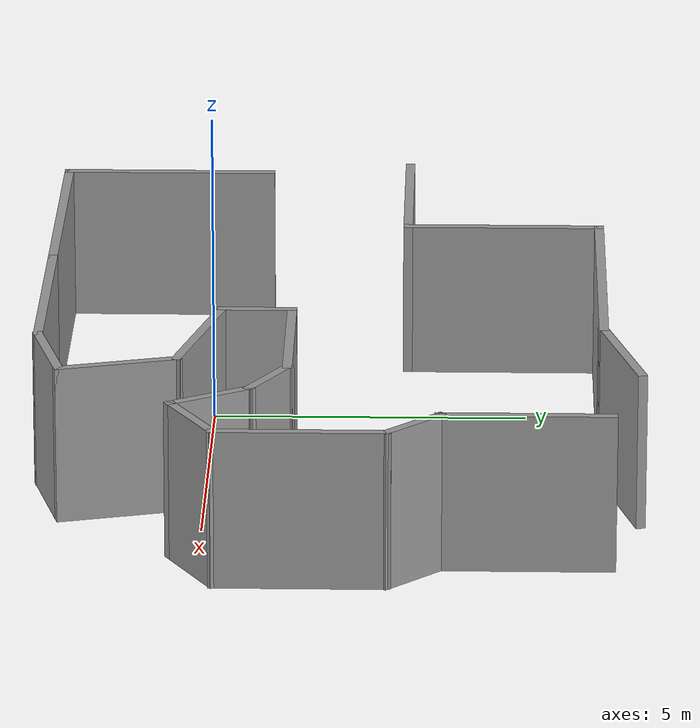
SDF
<?xml version='1.0'?>
<sdf version='1.7'>
  <model name='ExampleLabyrinth'>
    <pose>0.987414 2.0609 0 0 -0 0</pose>
    <link name='Wall_0'>
      <collision name='Wall_0_Collision'>
        <geometry>
          <box>
            <size>3.5 0.15 2.5</size>
          </box>
        </geometry>
        <pose>0 0 1.25 0 -0 0</pose>
      </collision>
      <visual name='Wall_0_Visual'>
        <pose>0 0 1.25 0 -0 0</pose>
        <geometry>
          <box>
            <size>3.5 0.15 2.5</size>
          </box>
        </geometry>
        <material>
          <script>
            <uri>file://media/materials/scripts/gazebo.material</uri>
            <name>Gazebo/Grey</name>
          </script>
          <ambient>1 1 1 1</ambient>
        </material>
        <meta>
          <layer>0</layer>
        </meta>
      </visual>
      <pose>-5.88741 -2.9859 0 0 -0 -1.5708</pose>
    </link>
    <link name='Wall_1'>
      <collision name='Wall_1_Collision'>
        <geometry>
          <box>
            <size>4.5 0.15 2.5</size>
          </box>
        </geometry>
        <pose>0 0 1.25 0 -0 0</pose>
      </collision>
      <visual name='Wall_1_Visual'>
        <pose>0 0 1.25 0 -0 0</pose>
        <geometry>
          <box>
            <size>4.5 0.15 2.5</size>
          </box>
        </geometry>
        <material>
          <script>
            <uri>file://media/materials/scripts/gazebo.material</uri>
            <name>Gazebo/Grey</name>
          </script>
          <ambient>1 1 1 1</ambient>
        </material>
        <meta>
          <layer>0</layer>
        </meta>
      </visual>
      <pose>-3.71241 -4.6609 0 0 -0 0</pose>
    </link>
    <link name='Wall_11'>
      <collision name='Wall_11_Collision'>
        <geometry>
          <box>
            <size>1.5 0.15 2.5</size>
          </box>
        </geometry>
        <pose>0 0 1.25 0 -0 0</pose>
      </collision>
      <visual name='Wall_11_Visual'>
        <pose>0 0 1.25 0 -0 0</pose>
        <geometry>
          <box>
            <size>1.5 0.15 2.5</size>
          </box>
        </geometry>
        <material>
          <script>
            <uri>file://media/materials/scripts/gazebo.material</uri>
            <name>Gazebo/Grey</name>
          </script>
          <ambient>1 1 1 1</ambient>
        </material>
        <meta>
          <layer>0</layer>
        </meta>
      </visual>
      <pose>5.67152 -2.13323 0 0 -0 0.523599</pose>
    </link>
    <link name='Wall_13'>
      <collision name='Wall_13_Collision'>
        <geometry>
          <box>
            <size>2.75 0.15 2.5</size>
          </box>
        </geometry>
        <pose>0 0 1.25 0 -0 0</pose>
      </collision>
      <visual name='Wall_13_Visual'>
        <pose>0 0 1.25 0 -0 0</pose>
        <geometry>
          <box>
            <size>2.75 0.15 2.5</size>
          </box>
        </geometry>
        <material>
          <script>
            <uri>file://media/materials/scripts/gazebo.material</uri>
            <name>Gazebo/Grey</name>
          </script>
          <ambient>1 1 1 1</ambient>
        </material>
        <meta>
          <layer>0</layer>
        </meta>
      </visual>
      <pose>6.25609 -0.495735 0 0 -0 1.5708</pose>
    </link>
    <link name='Wall_14'>
      <collision name='Wall_14_Collision'>
        <geometry>
          <box>
            <size>1.25727 0.15 2.5</size>
          </box>
        </geometry>
        <pose>0 0 1.25 0 -0 0</pose>
      </collision>
      <visual name='Wall_14_Visual'>
        <pose>0 0 1.25 0 -0 0</pose>
        <geometry>
          <box>
            <size>1.25727 0.15 2.5</size>
          </box>
        </geometry>
        <material>
          <script>
            <uri>file://media/materials/scripts/gazebo.material</uri>
            <name>Gazebo/Grey</name>
          </script>
          <ambient>1 1 1 1</ambient>
        </material>
        <meta>
          <layer>0</layer>
        </meta>
      </visual>
      <pose>5.87218 1.20317 0 0 -0 2.33704</pose>
    </link>
    <link name='Wall_16'>
      <collision name='Wall_16_Collision'>
        <geometry>
          <box>
            <size>2.75 0.15 2.5</size>
          </box>
        </geometry>
        <pose>0 0 1.25 0 -0 0</pose>
      </collision>
      <visual name='Wall_16_Visual'>
        <pose>0 0 1.25 0 -0 0</pose>
        <geometry>
          <box>
            <size>2.75 0.15 2.5</size>
          </box>
        </geometry>
        <material>
          <script>
            <uri>file://media/materials/scripts/gazebo.material</uri>
            <name>Gazebo/Grey</name>
          </script>
          <ambient>1 1 1 1</ambient>
        </material>
        <meta>
          <layer>0</layer>
        </meta>
      </visual>
      <pose>5.48827 2.89208 0 0 -0 1.5708</pose>
    </link>
    <link name='Wall_18'>
      <collision name='Wall_18_Collision'>
        <geometry>
          <box>
            <size>2.25 0.15 2.5</size>
          </box>
        </geometry>
        <pose>0 0 1.25 0 -0 0</pose>
      </collision>
      <visual name='Wall_18_Visual'>
        <pose>0 0 1.25 0 -0 0</pose>
        <geometry>
          <box>
            <size>2.25 0.15 2.5</size>
          </box>
        </geometry>
        <material>
          <script>
            <uri>file://media/materials/scripts/gazebo.material</uri>
            <name>Gazebo/Grey</name>
          </script>
          <ambient>1 1 1 1</ambient>
        </material>
        <meta>
          <layer>0</layer>
        </meta>
      </visual>
      <pose>2.67709 4.38914 0 0 -0 -2.87979</pose>
    </link>
    <link name='Wall_19'>
      <collision name='Wall_19_Collision'>
        <geometry>
          <box>
            <size>5 0.15 2.5</size>
          </box>
        </geometry>
        <pose>0 0 1.25 0 -0 0</pose>
      </collision>
      <visual name='Wall_19_Visual'>
        <pose>0 0 1.25 0 -0 0</pose>
        <geometry>
          <box>
            <size>5 0.15 2.5</size>
          </box>
        </geometry>
        <material>
          <script>
            <uri>file://media/materials/scripts/gazebo.material</uri>
            <name>Gazebo/Grey</name>
          </script>
          <ambient>1 1 1 1</ambient>
        </material>
        <meta>
          <layer>0</layer>
        </meta>
      </visual>
      <pose>-0.762136 4.11738 0 0 -0 3.14159</pose>
    </link>
    <link name='Wall_2'>
      <collision name='Wall_2_Collision'>
        <geometry>
          <box>
            <size>3.75 0.15 2.5</size>
          </box>
        </geometry>
        <pose>0 0 1.25 0 -0 0</pose>
      </collision>
      <visual name='Wall_2_Visual'>
        <pose>0 0 1.25 0 -0 0</pose>
        <geometry>
          <box>
            <size>3.75 0.15 2.5</size>
          </box>
        </geometry>
        <material>
          <script>
            <uri>file://media/materials/scripts/gazebo.material</uri>
            <name>Gazebo/Grey</name>
          </script>
          <ambient>1 1 1 1</ambient>
        </material>
        <meta>
          <layer>0</layer>
        </meta>
      </visual>
      <pose>0.262586 -4.6609 0 0 -0 0</pose>
    </link>
    <link name='Wall_20'>
      <collision name='Wall_20_Collision'>
        <geometry>
          <box>
            <size>3.25 0.15 2.5</size>
          </box>
        </geometry>
        <pose>0 0 1.25 0 -0 0</pose>
      </collision>
      <visual name='Wall_20_Visual'>
        <pose>0 0 1.25 0 -0 0</pose>
        <geometry>
          <box>
            <size>3.25 0.15 2.5</size>
          </box>
        </geometry>
        <material>
          <script>
            <uri>file://media/materials/scripts/gazebo.material</uri>
            <name>Gazebo/Grey</name>
          </script>
          <ambient>1 1 1 1</ambient>
        </material>
        <meta>
          <layer>0</layer>
        </meta>
      </visual>
      <pose>-3.18714 2.56738 0 0 -0 -1.5708</pose>
    </link>
    <link name='Wall_21'>
      <collision name='Wall_21_Collision'>
        <geometry>
          <box>
            <size>3.25 0.15 2.5</size>
          </box>
        </geometry>
        <pose>0 0 1.25 0 -0 0</pose>
      </collision>
      <visual name='Wall_21_Visual'>
        <pose>0 0 1.25 0 -0 0</pose>
        <geometry>
          <box>
            <size>3.25 0.15 2.5</size>
          </box>
        </geometry>
        <material>
          <script>
            <uri>file://media/materials/scripts/gazebo.material</uri>
            <name>Gazebo/Grey</name>
          </script>
          <ambient>1 1 1 1</ambient>
        </material>
        <meta>
          <layer>0</layer>
        </meta>
      </visual>
      <pose>-4.73714 1.01738 0 0 -0 3.14159</pose>
    </link>
    <link name='Wall_3'>
      <collision name='Wall_3_Collision'>
        <geometry>
          <box>
            <size>1.75 0.15 2.5</size>
          </box>
        </geometry>
        <pose>0 0 1.25 0 -0 0</pose>
      </collision>
      <visual name='Wall_3_Visual'>
        <pose>0 0 1.25 0 -0 0</pose>
        <geometry>
          <box>
            <size>1.75 0.15 2.5</size>
          </box>
        </geometry>
        <material>
          <script>
            <uri>file://media/materials/scripts/gazebo.material</uri>
            <name>Gazebo/Grey</name>
          </script>
          <ambient>1 1 1 1</ambient>
        </material>
        <meta>
          <layer>0</layer>
        </meta>
      </visual>
      <pose>2.83533 -4.45384 0 0 -0 0.261799</pose>
    </link>
    <link name='Wall_4'>
      <collision name='Wall_4_Collision'>
        <geometry>
          <box>
            <size>2 0.15 2.5</size>
          </box>
        </geometry>
        <pose>0 0 1.25 0 -0 0</pose>
      </collision>
      <visual name='Wall_4_Visual'>
        <pose>0 0 1.25 0 -0 0</pose>
        <geometry>
          <box>
            <size>2 0.15 2.5</size>
          </box>
        </geometry>
        <material>
          <script>
            <uri>file://media/materials/scripts/gazebo.material</uri>
            <name>Gazebo/Grey</name>
          </script>
          <ambient>1 1 1 1</ambient>
        </material>
        <meta>
          <layer>0</layer>
        </meta>
      </visual>
      <pose>3.36866 -3.35331 0 0 -0 1.8326</pose>
    </link>
    <link name='Wall_5'>
      <collision name='Wall_5_Collision'>
        <geometry>
          <box>
            <size>2.5 0.15 2.5</size>
          </box>
        </geometry>
        <pose>0 0 1.25 0 -0 0</pose>
      </collision>
      <visual name='Wall_5_Visual'>
        <pose>0 0 1.25 0 -0 0</pose>
        <geometry>
          <box>
            <size>2.5 0.15 2.5</size>
          </box>
        </geometry>
        <material>
          <script>
            <uri>file://media/materials/scripts/gazebo.material</uri>
            <name>Gazebo/Grey</name>
          </script>
          <ambient>1 1 1 1</ambient>
        </material>
        <meta>
          <layer>0</layer>
        </meta>
      </visual>
      <pose>1.99429 -2.15571 0 0 -0 2.87979</pose>
    </link>
    <link name='Wall_6'>
      <collision name='Wall_6_Collision'>
        <geometry>
          <box>
            <size>1.25 0.15 2.5</size>
          </box>
        </geometry>
        <pose>0 0 1.25 0 -0 0</pose>
      </collision>
      <visual name='Wall_6_Visual'>
        <pose>0 0 1.25 0 -0 0</pose>
        <geometry>
          <box>
            <size>1.25 0.15 2.5</size>
          </box>
        </geometry>
        <material>
          <script>
            <uri>file://media/materials/scripts/gazebo.material</uri>
            <name>Gazebo/Grey</name>
          </script>
          <ambient>1 1 1 1</ambient>
        </material>
        <meta>
          <layer>0</layer>
        </meta>
      </visual>
      <pose>0.859326 -1.3016 0 0 -0 1.5708</pose>
    </link>
    <link name='Wall_7'>
      <collision name='Wall_7_Collision'>
        <geometry>
          <box>
            <size>2.75 0.15 2.5</size>
          </box>
        </geometry>
        <pose>0 0 1.25 0 -0 0</pose>
      </collision>
      <visual name='Wall_7_Visual'>
        <pose>0 0 1.25 0 -0 0</pose>
        <geometry>
          <box>
            <size>2.75 0.15 2.5</size>
          </box>
        </geometry>
        <material>
          <script>
            <uri>file://media/materials/scripts/gazebo.material</uri>
            <name>Gazebo/Grey</name>
          </script>
          <ambient>1 1 1 1</ambient>
        </material>
        <meta>
          <layer>0</layer>
        </meta>
      </visual>
      <pose>2.15933 -0.7516 0 0 -0 0</pose>
    </link>
    <link name='Wall_8'>
      <collision name='Wall_8_Collision'>
        <geometry>
          <box>
            <size>1.25 0.15 2.5</size>
          </box>
        </geometry>
        <pose>0 0 1.25 0 -0 0</pose>
      </collision>
      <visual name='Wall_8_Visual'>
        <pose>0 0 1.25 0 -0 0</pose>
        <geometry>
          <box>
            <size>1.25 0.15 2.5</size>
          </box>
        </geometry>
        <material>
          <script>
            <uri>file://media/materials/scripts/gazebo.material</uri>
            <name>Gazebo/Grey</name>
          </script>
          <ambient>1 1 1 1</ambient>
        </material>
        <meta>
          <layer>0</layer>
        </meta>
      </visual>
      <pose>3.93564 -1.0266 0 0 -0 -0.523599</pose>
    </link>
    <link name='Wall_9'>
      <collision name='Wall_9_Collision'>
        <geometry>
          <box>
            <size>1.5 0.15 2.5</size>
          </box>
        </geometry>
        <pose>0 0 1.25 0 -0 0</pose>
      </collision>
      <visual name='Wall_9_Visual'>
        <pose>0 0 1.25 0 -0 0</pose>
        <geometry>
          <box>
            <size>1.5 0.15 2.5</size>
          </box>
        </geometry>
        <material>
          <script>
            <uri>file://media/materials/scripts/gazebo.material</uri>
            <name>Gazebo/Grey</name>
          </script>
          <ambient>1 1 1 1</ambient>
        </material>
        <meta>
          <layer>0</layer>
        </meta>
      </visual>
      <pose>4.74945 -1.88617 0 0 -0 -1.0472</pose>
    </link>
    <static>1</static>
  </model>
</sdf>
